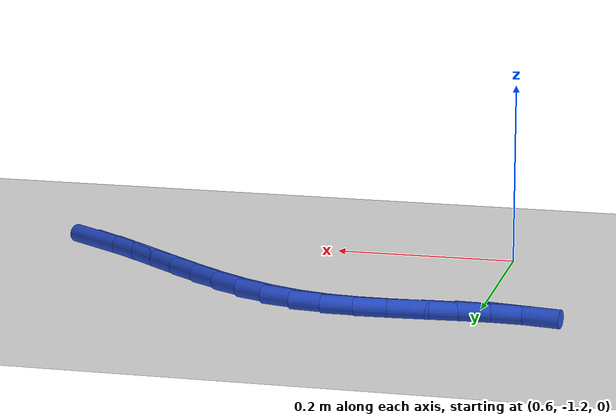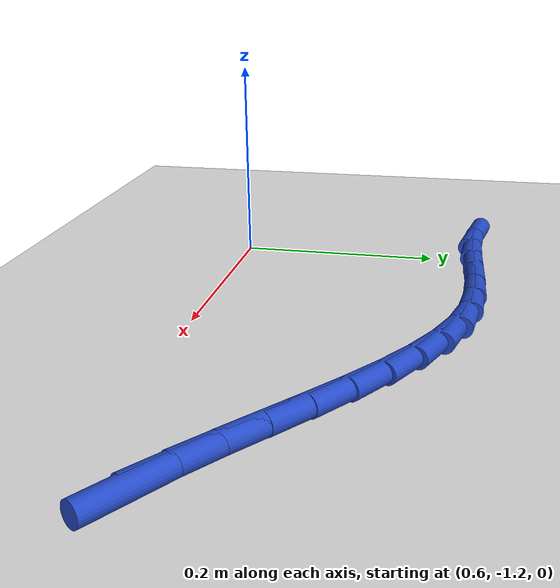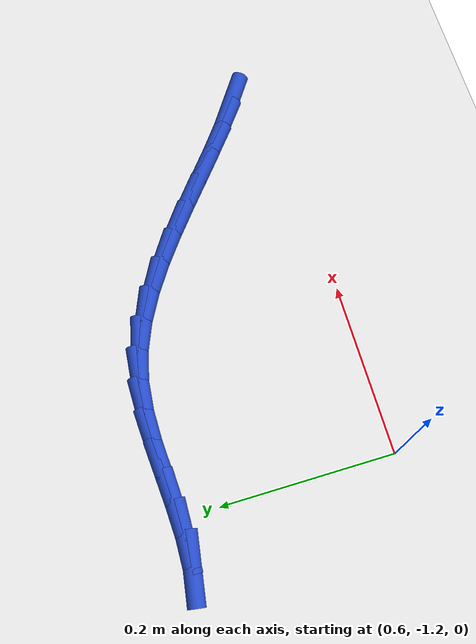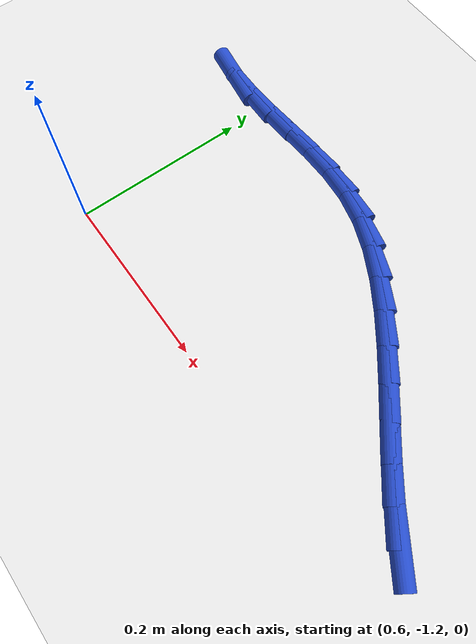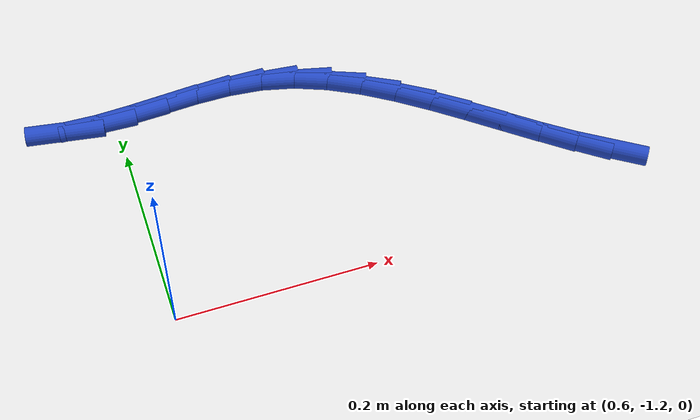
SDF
<sdf version="1.6">
 <world name="default">
  <model name="ground_plane">
   <static>1</static>
   <link name="link">
    <collision name="collision">
     <geometry><plane><normal>0 0 1</normal><size>100 100</size></plane></geometry>
     <surface><friction><ode><mu>100</mu><mu2>50</mu2></ode></friction></surface>
    </collision>
    <visual name="visual">
     <cast_shadows>0</cast_shadows>
     <geometry><plane><normal>0 0 1</normal><size>100 100</size></plane></geometry>
     <material>
      <script><uri>file://media/materials/scripts/gazebo.material</uri><name>Gazebo/WhiteGlow</name></script>
     </material>
    </visual>
   </link>
  </model>
  <model name="line">
   <link name="link_151">
    <pose>1.0652336410527468 -1.1491242396046986 0.01 0 1.57 -0.5926780630344085</pose>
    <collision name="collision">
     <geometry><cylinder><radius>0.01</radius><length>0.08</length></cylinder></geometry>
    </collision>
    <visual name="visual">
     <material>
      <script><name>Gazebo/Blue</name><uri>file://media/materials/scripts/gazebo.material</uri></script>
     </material>
     <geometry><cylinder><radius>0.01</radius><length>0.08</length></cylinder></geometry>
    </visual>
   </link>
   <link name="link_152">
    <pose>1.0363310729695752 -1.1296600573392759 0.01 0 1.57 -0.6471299190488754</pose>
    <collision name="collision">
     <geometry><cylinder><radius>0.01</radius><length>0.08</length></cylinder></geometry>
    </collision>
    <visual name="visual">
     <material>
      <script><name>Gazebo/Blue</name><uri>file://media/materials/scripts/gazebo.material</uri></script>
     </material>
     <geometry><cylinder><radius>0.01</radius><length>0.08</length></cylinder></geometry>
    </visual>
   </link>
   <link name="link_153">
    <pose>1.0072300995483592 -1.1076688732605793 0.01 0 1.57 -0.6760116261796846</pose>
    <collision name="collision">
     <geometry><cylinder><radius>0.01</radius><length>0.08</length></cylinder></geometry>
    </collision>
    <visual name="visual">
     <material>
      <script><name>Gazebo/Blue</name><uri>file://media/materials/scripts/gazebo.material</uri></script>
     </material>
     <geometry><cylinder><radius>0.01</radius><length>0.08</length></cylinder></geometry>
    </visual>
   </link>
   <link name="link_154">
    <pose>0.9778370557373096 -1.0840931230475068 0.01 0 1.57 -0.6827739839495462</pose>
    <collision name="collision">
     <geometry><cylinder><radius>0.01</radius><length>0.08</length></cylinder></geometry>
    </collision>
    <visual name="visual">
     <material>
      <script><name>Gazebo/Blue</name><uri>file://media/materials/scripts/gazebo.material</uri></script>
     </material>
     <geometry><cylinder><radius>0.01</radius><length>0.08</length></cylinder></geometry>
    </visual>
   </link>
   <link name="link_155">
    <pose>0.9480582764846361 -1.059875242378957 0.01 0 1.57 -0.6688905281855836</pose>
    <collision name="collision">
     <geometry><cylinder><radius>0.01</radius><length>0.08</length></cylinder></geometry>
    </collision>
    <visual name="visual">
     <material>
      <script><name>Gazebo/Blue</name><uri>file://media/materials/scripts/gazebo.material</uri></script>
     </material>
     <geometry><cylinder><radius>0.01</radius><length>0.08</length></cylinder></geometry>
    </visual>
   </link>
   <link name="link_156">
    <pose>0.9178000967385491 -1.0359576669338286 0.01 0 1.57 -0.6341237900719319</pose>
    <collision name="collision">
     <geometry><cylinder><radius>0.01</radius><length>0.08</length></cylinder></geometry>
    </collision>
    <visual name="visual">
     <material>
      <script><name>Gazebo/Blue</name><uri>file://media/materials/scripts/gazebo.material</uri></script>
     </material>
     <geometry><cylinder><radius>0.01</radius><length>0.08</length></cylinder></geometry>
    </visual>
   </link>
   <link name="link_157">
    <pose>0.886968851447259 -1.0132828323910203 0.01 0 1.57 -0.5767316455990649</pose>
    <collision name="collision">
     <geometry><cylinder><radius>0.01</radius><length>0.08</length></cylinder></geometry>
    </collision>
    <visual name="visual">
     <material>
      <script><name>Gazebo/Blue</name><uri>file://media/materials/scripts/gazebo.material</uri></script>
     </material>
     <geometry><cylinder><radius>0.01</radius><length>0.08</length></cylinder></geometry>
    </visual>
   </link>
   <link name="link_158">
    <pose>0.855470875558976 -0.9927931744294305 0.01 0 1.57 -0.4937527796591568</pose>
    <collision name="collision">
     <geometry><cylinder><radius>0.01</radius><length>0.08</length></cylinder></geometry>
    </collision>
    <visual name="visual">
     <material>
      <script><name>Gazebo/Blue</name><uri>file://media/materials/scripts/gazebo.material</uri></script>
     </material>
     <geometry><cylinder><radius>0.01</radius><length>0.08</length></cylinder></geometry>
    </visual>
   </link>
   <link name="link_159">
    <pose>0.8232125040219102 -0.9754311287279578 0.01 0 1.57 -0.38173005092231194</pose>
    <collision name="collision">
     <geometry><cylinder><radius>0.01</radius><length>0.08</length></cylinder></geometry>
    </collision>
    <visual name="visual">
     <material>
      <script><name>Gazebo/Blue</name><uri>file://media/materials/scripts/gazebo.material</uri></script>
     </material>
     <geometry><cylinder><radius>0.01</radius><length>0.08</length></cylinder></geometry>
    </visual>
   </link>
   <link name="link_160">
    <pose>0.7901000717842723 -0.962139130965501 0.01 0 1.57 -0.23907784209590535</pose>
    <collision name="collision">
     <geometry><cylinder><radius>0.01</radius><length>0.08</length></cylinder></geometry>
    </collision>
    <visual name="visual">
     <material>
      <script><name>Gazebo/Blue</name><uri>file://media/materials/scripts/gazebo.material</uri></script>
     </material>
     <geometry><cylinder><radius>0.01</radius><length>0.08</length></cylinder></geometry>
    </visual>
   </link>
   <link name="link_161">
    <pose>0.7560440842338879 -0.953838340210234 0.01 0 1.57 -0.09613206269532497</pose>
    <collision name="collision">
     <geometry><cylinder><radius>0.01</radius><length>0.08</length></cylinder></geometry>
    </collision>
    <visual name="visual">
     <material>
      <script><name>Gazebo/Blue</name><uri>file://media/materials/scripts/gazebo.material</uri></script>
     </material>
     <geometry><cylinder><radius>0.01</radius><length>0.08</length></cylinder></geometry>
    </visual>
   </link>
   <link name="link_162">
    <pose>0.7211464951639742 -0.9504731903956113 0.01 0 1.57 0.0042997196943305544</pose>
    <collision name="collision">
     <geometry><cylinder><radius>0.01</radius><length>0.08</length></cylinder></geometry>
    </collision>
    <visual name="visual">
     <material>
      <script><name>Gazebo/Blue</name><uri>file://media/materials/scripts/gazebo.material</uri></script>
     </material>
     <geometry><cylinder><radius>0.01</radius><length>0.08</length></cylinder></geometry>
    </visual>
   </link>
   <link name="link_163">
    <pose>0.6857763898566496 -0.9506252728712057 0.01 0 1.57 0.060560135665510724</pose>
    <collision name="collision">
     <geometry><cylinder><radius>0.01</radius><length>0.08</length></cylinder></geometry>
    </collision>
    <visual name="visual">
     <material>
      <script><name>Gazebo/Blue</name><uri>file://media/materials/scripts/gazebo.material</uri></script>
     </material>
     <geometry><cylinder><radius>0.01</radius><length>0.08</length></cylinder></geometry>
    </visual>
   </link>
   <link name="link_164">
    <pose>0.6503226891745719 -0.9527749824786577 0.01 0 1.57 0.07462229076204341</pose>
    <collision name="collision">
     <geometry><cylinder><radius>0.01</radius><length>0.08</length></cylinder></geometry>
    </collision>
    <visual name="visual">
     <material>
      <script><name>Gazebo/Blue</name><uri>file://media/materials/scripts/gazebo.material</uri></script>
     </material>
     <geometry><cylinder><radius>0.01</radius><length>0.08</length></cylinder></geometry>
    </visual>
   </link>
   <link name="link_165">
    <pose>0.6151743139803988 -0.9554027140596068 0.01 0 1.57 0.046004044545579686</pose>
    <collision name="collision">
     <geometry><cylinder><radius>0.01</radius><length>0.08</length></cylinder></geometry>
    </collision>
    <visual name="visual">
     <material>
      <script><name>Gazebo/Blue</name><uri>file://media/materials/scripts/gazebo.material</uri></script>
     </material>
     <geometry><cylinder><radius>0.01</radius><length>0.08</length></cylinder></geometry>
    </visual>
   </link>
   <link name="link_166">
    <pose>0.580720185136788 -0.9569888624556933 0.01 0 1.57 -0.02920990514942002</pose>
    <collision name="collision">
     <geometry><cylinder><radius>0.01</radius><length>0.08</length></cylinder></geometry>
    </collision>
    <visual name="visual">
     <material>
      <script><name>Gazebo/Blue</name><uri>file://media/materials/scripts/gazebo.material</uri></script>
     </material>
     <geometry><cylinder><radius>0.01</radius><length>0.08</length></cylinder></geometry>
    </visual>
   </link>
   <link name="link_167">
    <pose>0.5473492235063983 -0.9560138225085569 0.01 0 1.57 -0.15520235038451693</pose>
    <collision name="collision">
     <geometry><cylinder><radius>0.01</radius><length>0.08</length></cylinder></geometry>
    </collision>
    <visual name="visual">
     <material>
      <script><name>Gazebo/Blue</name><uri>file://media/materials/scripts/gazebo.material</uri></script>
     </material>
     <geometry><cylinder><radius>0.01</radius><length>0.08</length></cylinder></geometry>
    </visual>
   </link>
  </model>
 </world>
</sdf>
